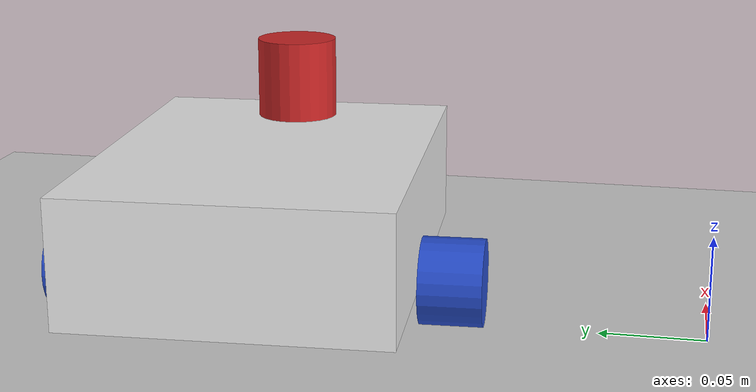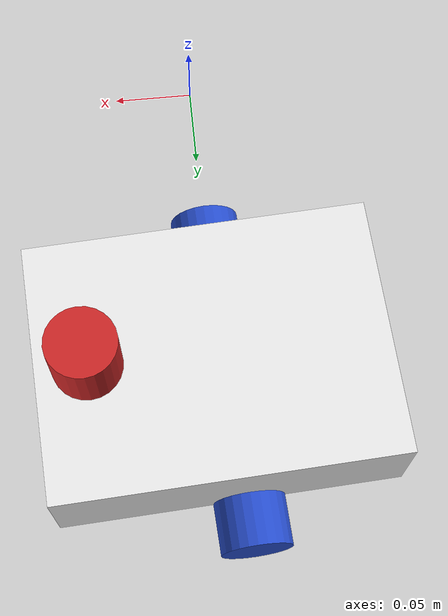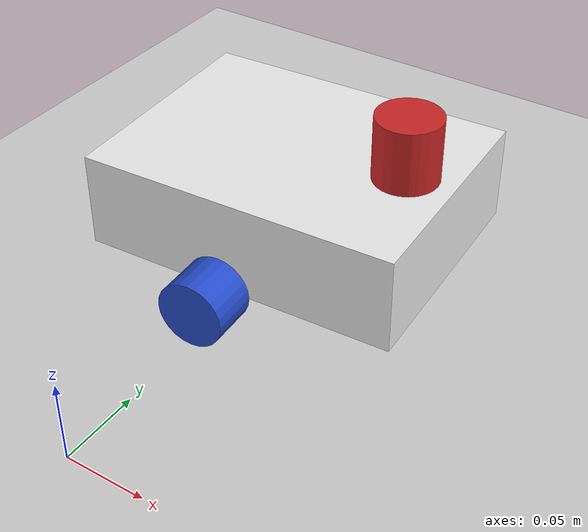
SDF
<sdf version="1.7">
 <world name="default">
  <light name="sun" type="directional">
   <pose>0 0 10 0 -0 0</pose>
   <diffuse>0.8 0.8 0.8 1</diffuse>
   <specular>0.2 0.2 0.2 1</specular>
   <attenuation>
    <range>1000</range>
    <constant>0.9</constant>
    <linear>0.01</linear>
    <quadratic>0.001</quadratic>
   </attenuation>
   <direction>-0.5 0.1 -0.9</direction>
   <spot><inner_angle>0</inner_angle><outer_angle>0</outer_angle><falloff>0</falloff></spot>
  </light>
  <model name="ground_plane">
   <static>1</static>
   <link name="link">
    <collision name="collision">
     <geometry><plane><normal>0 0 1</normal><size>100 100</size></plane></geometry>
     <surface><friction><ode><mu>100</mu><mu2>50</mu2></ode></friction></surface>
    </collision>
    <visual name="visual">
     <cast_shadows>0</cast_shadows>
     <geometry><plane><normal>0 0 1</normal><size>100 100</size></plane></geometry>
     <material>
      <script><uri>file://media/materials/scripts/gazebo.material</uri><name>Gazebo/Grey</name></script>
     </material>
    </visual>
   </link>
  </model>
  <gravity>0 0 -9.8</gravity>
  <magnetic_field>6e-06 2.3e-05 -4.2e-05</magnetic_field>
  <atmosphere type="adiabatic"/>
  <physics type="ode">
   <max_step_size>0.001</max_step_size>
   <real_time_factor>1</real_time_factor>
   <real_time_update_rate>1000</real_time_update_rate>
  </physics>
  <scene><ambient>0.4 0.4 0.4 1</ambient><background>0.7 0.7 0.7 1</background><shadows>1</shadows></scene>
  <audio><device>default</device></audio>
  <spherical_coordinates>
   <surface_model>EARTH_WGS84</surface_model>
   <latitude_deg>0</latitude_deg>
   <longitude_deg>0</longitude_deg>
   <elevation>0</elevation>
   <heading_deg>0</heading_deg>
  </spherical_coordinates>
  <model name="robot">
   <link name="base_link">
    <inertial>
     <pose>0.052857 0 0.032857 0 -0 0</pose>
     <mass>0.7</mass>
     <inertia>
      <ixx>0.00146276</ixx>
      <ixy>0</ixy>
      <ixz>0.000425714</ixz>
      <iyy>0.00668621</iyy>
      <iyz>0</iyz>
      <izz>0.00713609</izz>
     </inertia>
    </inertial>
    <collision name="base_link_fixed_joint_lump__chassis_collision">
     <pose>0.01 0 0.03 0 -0 0</pose>
     <geometry><box><size>0.2 0.15 0.06</size></box></geometry>
    </collision>
    <collision name="base_link_fixed_joint_lump__caster_wheel_collision_1">
     <pose>0.07 0 0 0 -0 0</pose>
     <geometry><sphere><radius>0.021</radius></sphere></geometry>
     <surface><friction><ode><mu>0.001</mu><mu2>0.001</mu2></ode></friction></surface>
    </collision>
    <collision name="base_link_fixed_joint_lump__laser_frame_collision_2">
     <pose>0.08 0 0.08 0 -0 0</pose>
     <geometry><cylinder><length>0.04</length><radius>0.02</radius></cylinder></geometry>
    </collision>
    <visual name="base_link_fixed_joint_lump__chassis_visual">
     <pose>0.01 0 0.03 0 -0 0</pose>
     <geometry><box><size>0.2 0.15 0.06</size></box></geometry>
     <material>
      <script><name>Gazebo/White</name><uri>file://media/materials/scripts/gazebo.material</uri></script>
     </material>
    </visual>
    <visual name="base_link_fixed_joint_lump__caster_wheel_visual_1">
     <pose>0.07 0 0 0 -0 0</pose>
     <geometry><sphere><radius>0.021</radius></sphere></geometry>
     <material>
      <script><name>Gazebo/Black</name><uri>file://media/materials/scripts/gazebo.material</uri></script>
     </material>
    </visual>
    <visual name="base_link_fixed_joint_lump__laser_frame_visual_2">
     <pose>0.08 0 0.08 0 -0 0</pose>
     <geometry><cylinder><length>0.04</length><radius>0.02</radius></cylinder></geometry>
     <material>
      <script><name>Gazebo/Red</name><uri>file://media/materials/scripts/gazebo.material</uri></script>
     </material>
    </visual>
    <sensor name="laser" type="ray">
     <visualize>0</visualize>
     <update_rate>10</update_rate>
     <ray>
      <scan>
       <horizontal>
        <samples>682</samples>
        <min_angle>-2.094</min_angle>
        <max_angle>2.094</max_angle>
        <resolution>1</resolution>
       </horizontal>
       <vertical><samples>1</samples><min_angle>0</min_angle><max_angle>0</max_angle></vertical>
      </scan>
      <range><min>0.06</min><max>12</max></range>
     </ray>
     <plugin name="laser_controller" filename="libgazebo_ros_ray_sensor.so">
      <ros><argument>~/out:=scan</argument></ros>
      <output_type>sensor_msgs/LaserScan</output_type>
      <frame_name>laser_frame</frame_name>
     </plugin>
     <pose>0.08 0 0.08 0 -0 0</pose>
    </sensor>
   </link>
   <joint name="left_wheel_joint" type="revolute">
    <pose relative_to="base_link">0 0.09 0 -1.5708 0 0</pose>
    <parent>base_link</parent>
    <child>left_wheel</child>
    <axis>
     <xyz>0 0 1</xyz>
     <limit><lower>-1e+16</lower><upper>1e+16</upper></limit>
     <dynamics><spring_reference>0</spring_reference><spring_stiffness>0</spring_stiffness></dynamics>
    </axis>
   </joint>
   <link name="left_wheel">
    <pose relative_to="left_wheel_joint">0 0 0 0 -0 0</pose>
    <inertial>
     <pose>0 0.09 0 0 -0 0</pose>
     <mass>0.1</mass>
     <inertia>
      <ixx>1.8525e-05</ixx>
      <ixy>0</ixy>
      <ixz>0</ixz>
      <iyy>1.8525e-05</iyy>
      <iyz>0</iyz>
      <izz>2.205e-05</izz>
     </inertia>
    </inertial>
    <collision name="left_wheel_collision">
     <geometry><sphere><radius>0.021</radius></sphere></geometry>
    </collision>
    <visual name="left_wheel_visual">
     <geometry><cylinder><length>0.03</length><radius>0.021</radius></cylinder></geometry>
     <material>
      <script><name>Gazebo/Blue</name><uri>file://media/materials/scripts/gazebo.material</uri></script>
     </material>
    </visual>
   </link>
   <joint name="right_wheel_joint" type="revolute">
    <pose relative_to="base_link">0 -0.09 0 1.5708 -0 0</pose>
    <parent>base_link</parent>
    <child>right_wheel</child>
    <axis>
     <xyz>0 0 -1</xyz>
     <limit><lower>-1e+16</lower><upper>1e+16</upper></limit>
     <dynamics><spring_reference>0</spring_reference><spring_stiffness>0</spring_stiffness></dynamics>
    </axis>
   </joint>
   <link name="right_wheel">
    <pose relative_to="right_wheel_joint">0 0 0 0 -0 0</pose>
    <inertial>
     <mass>0.1</mass>
     <inertia>
      <ixx>1.8525e-05</ixx>
      <ixy>0</ixy>
      <ixz>0</ixz>
      <iyy>1.8525e-05</iyy>
      <iyz>0</iyz>
      <izz>2.205e-05</izz>
     </inertia>
    </inertial>
    <collision name="right_wheel_collision">
     <geometry><sphere><radius>0.021</radius></sphere></geometry>
    </collision>
    <visual name="right_wheel_visual">
     <geometry><cylinder><length>0.03</length><radius>0.021</radius></cylinder></geometry>
     <material>
      <script><name>Gazebo/Blue</name><uri>file://media/materials/scripts/gazebo.material</uri></script>
     </material>
    </visual>
   </link>
   <static>0</static>
   <plugin name="gazebo_ros2_control" filename="libgazebo_ros2_control.so">
    <parameters>/home/mpinho/proj_ws/install/msc_aut_vehicles/share/msc_aut_vehicles/config/my_controllers.yaml</parameters>
   </plugin>
   <pose>-0.005871 0.208185 0.020998 1.9e-05 -2.7e-05 0.055423</pose>
  </model>
 </world>
</sdf>
